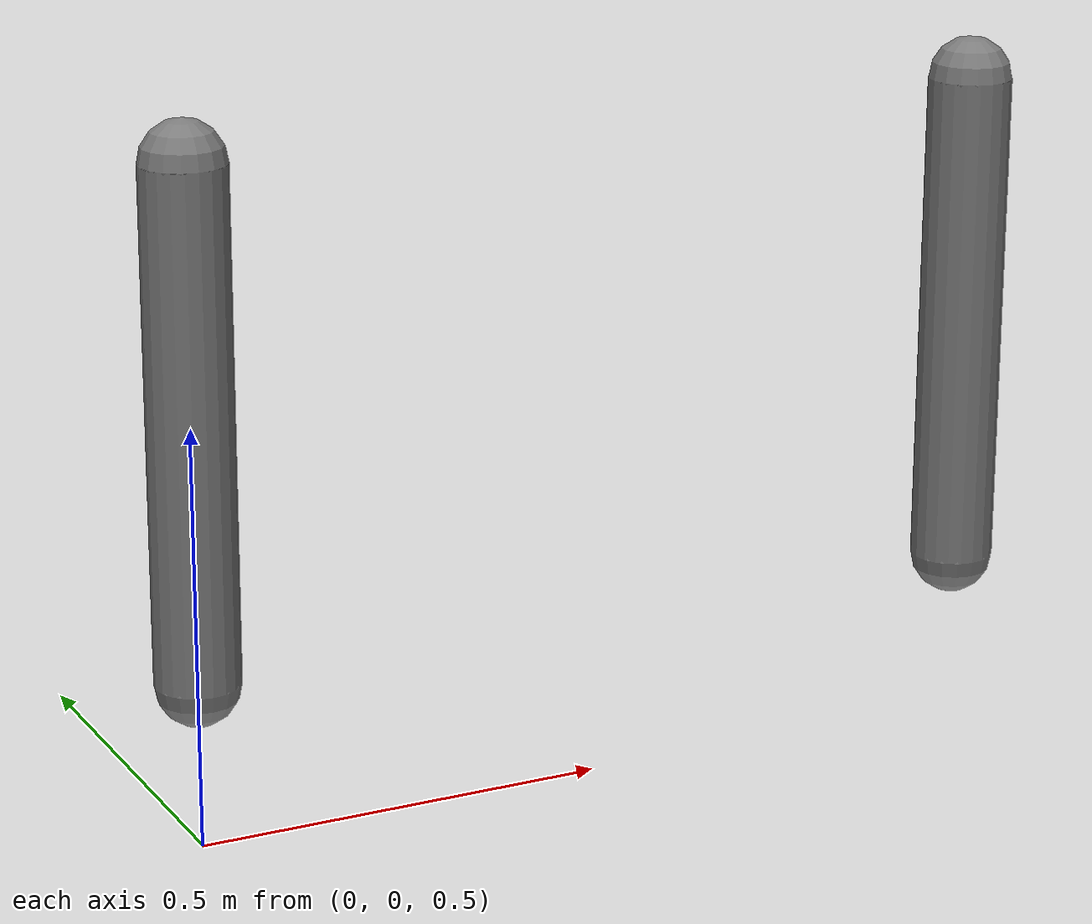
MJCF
<mujoco model="no_tendon_eq">
            <option gravity="0 0 0" timestep="0.001"/>
            <worldbody>
                <body name="b1" pos="0 0 1">
                    <joint name="J1" type="hinge" axis="0 1 0" damping="0.5"/>
                    <geom type="capsule" size="0.05 0.3" mass="1.0"/>
                </body>
                <body name="b2" pos="1 0 1">
                    <joint name="J2" type="hinge" axis="0 1 0" damping="0.5"/>
                    <geom type="capsule" size="0.05 0.3" mass="1.0"/>
                </body>
            </worldbody>
            <tendon>
                <fixed name="T1"><joint joint="J1" coef="1.0"/></fixed>
                <fixed name="T2"><joint joint="J2" coef="1.0"/></fixed>
            </tendon>
        </mujoco>
